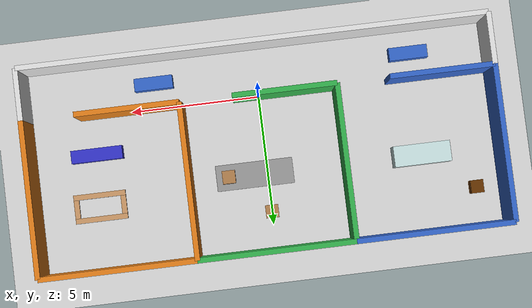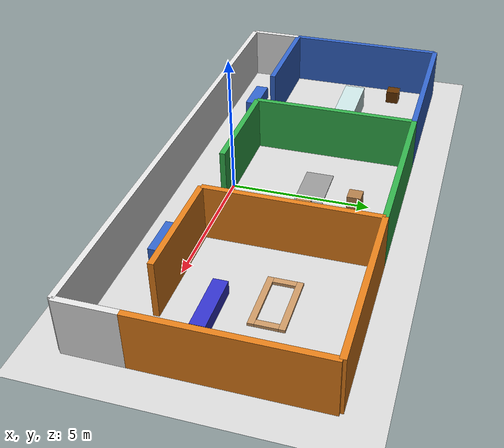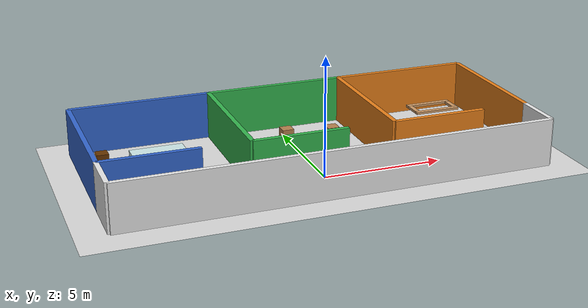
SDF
<?xml version='1.0' encoding='utf-8'?>
<sdf version='1.9'>
  <world name='pasillo_hospital_world'>
    <!-- PLUGINS BASE DE FÍSICAS -->
    <physics name='1ms' type='ignored'>
      <max_step_size>0.001</max_step_size>
      <real_time_factor>1</real_time_factor>
      <real_time_update_rate>1000</real_time_update_rate>
    </physics>
    <plugin name='gz::sim::systems::Physics' filename='ignition-gazebo-physics-system'/>
    <plugin name='gz::sim::systems::UserCommands' filename='ignition-gazebo-user-commands-system'/>
    <plugin name='gz::sim::systems::SceneBroadcaster' filename='ignition-gazebo-scene-broadcaster-system'/>
    <plugin name='gz::sim::systems::Contact' filename='ignition-gazebo-contact-system'/>
    <gravity>0 0 -9.8</gravity>

    <scene>
      <ambient>0.6 0.6 0.6 1</ambient>
      <background>0.8 0.8 0.8 1</background>
      <shadows>true</shadows>
    </scene>

    <!-- LUZ -->
    <light name='sun' type='directional'>
      <pose>0 0 10 0 0 0</pose>
      <cast_shadows>true</cast_shadows>
      <direction>-0.5 0.2 -0.9</direction>
      <diffuse>0.9 0.9 0.9 1</diffuse>
      <specular>0.2 0.2 0.2 1</specular>
    </light>

    <!-- SUELO -->
    <model name='ground_plane'>
      <static>true</static>
      <link name='link'>
        <collision name='collision'><geometry><plane><normal>0 0 1</normal><size>100 100</size></plane></geometry></collision>
        <visual name='visual'>
          <geometry><plane><normal>0 0 1</normal><size>100 100</size></plane></geometry>
          <material><ambient>0.85 0.85 0.85 1</ambient><diffuse>0.85 0.85 0.85 1</diffuse></material>
        </visual>
      </link>
    </model>

    <!-- ESTRUCTURA DEL EDIFICIO: 3 Cuartos Coloridos + 1 Pasillo -->
    <model name='building_structure'>
      <static>true</static>
      <link name='walls'>

        <!-- ================= PASILLO CENTRAL (BLANCO NEUTRO) ================= -->
        <!-- Pared inferior del pasillo -->
        <visual name='ext_front'><pose>0 -2 1 0 0 0</pose><geometry><box><size>18 0.2 2</size></box></geometry><material><ambient>0.9 0.9 0.9 1</ambient><diffuse>0.9 0.9 0.9 1</diffuse></material></visual>
        <collision name='cext_front'><pose>0 -2 1 0 0 0</pose><geometry><box><size>18 0.2 2</size></box></geometry></collision>

        <!-- Tapas laterales del pasillo -->
        <visual name='hall_left'><pose>-9 -1 1 0 0 1.5708</pose><geometry><box><size>2 0.2 2</size></box></geometry><material><ambient>0.9 0.9 0.9 1</ambient><diffuse>0.9 0.9 0.9 1</diffuse></material></visual>
        <collision name='chall_left'><pose>-9 -1 1 0 0 1.5708</pose><geometry><box><size>2 0.2 2</size></box></geometry></collision>
        <visual name='hall_right'><pose>9 -1 1 0 0 1.5708</pose><geometry><box><size>2 0.2 2</size></box></geometry><material><ambient>0.9 0.9 0.9 1</ambient><diffuse>0.9 0.9 0.9 1</diffuse></material></visual>
        <collision name='chall_right'><pose>9 -1 1 0 0 1.5708</pose><geometry><box><size>2 0.2 2</size></box></geometry></collision>

        <!-- ================= CUARTO 1 (IZQUIERDA - AZUL) ================= -->
        <visual name='r1_back'><pose>-6 6 1 0 0 0</pose><geometry><box><size>6 0.2 2</size></box></geometry><material><ambient>0.2 0.4 0.8 1</ambient><diffuse>0.2 0.4 0.8 1</diffuse></material></visual>
        <collision name='cr1_back'><pose>-6 6 1 0 0 0</pose><geometry><box><size>6 0.2 2</size></box></geometry></collision>

        <visual name='r1_left'><pose>-9 3 1 0 0 1.5708</pose><geometry><box><size>6 0.2 2</size></box></geometry><material><ambient>0.2 0.4 0.8 1</ambient><diffuse>0.2 0.4 0.8 1</diffuse></material></visual>
        <collision name='cr1_left'><pose>-9 3 1 0 0 1.5708</pose><geometry><box><size>6 0.2 2</size></box></geometry></collision>

        <visual name='r1_front'><pose>-7 0 1 0 0 0</pose><geometry><box><size>4 0.2 2</size></box></geometry><material><ambient>0.2 0.4 0.8 1</ambient><diffuse>0.2 0.4 0.8 1</diffuse></material></visual>
        <collision name='cr1_front'><pose>-7 0 1 0 0 0</pose><geometry><box><size>4 0.2 2</size></box></geometry></collision>

        <!-- ================= CUARTO 2 (CENTRO - VERDE) ================= -->
        <visual name='r2_back'><pose>0 6 1 0 0 0</pose><geometry><box><size>6 0.2 2</size></box></geometry><material><ambient>0.2 0.7 0.3 1</ambient><diffuse>0.2 0.7 0.3 1</diffuse></material></visual>
        <collision name='cr2_back'><pose>0 6 1 0 0 0</pose><geometry><box><size>6 0.2 2</size></box></geometry></collision>

        <!-- Pared divisoria entre Cuarto 1 y 2 -->
        <visual name='r2_left'><pose>-3 3 1 0 0 1.5708</pose><geometry><box><size>6 0.2 2</size></box></geometry><material><ambient>0.2 0.7 0.3 1</ambient><diffuse>0.2 0.7 0.3 1</diffuse></material></visual>
        <collision name='cr2_left'><pose>-3 3 1 0 0 1.5708</pose><geometry><box><size>6 0.2 2</size></box></geometry></collision>

        <visual name='r2_front'><pose>-1 0 1 0 0 0</pose><geometry><box><size>4 0.2 2</size></box></geometry><material><ambient>0.2 0.7 0.3 1</ambient><diffuse>0.2 0.7 0.3 1</diffuse></material></visual>
        <collision name='cr2_front'><pose>-1 0 1 0 0 0</pose><geometry><box><size>4 0.2 2</size></box></geometry></collision>

        <!-- ================= CUARTO 3 (DERECHA - NARANJA) ================= -->
        <visual name='r3_back'><pose>6 6 1 0 0 0</pose><geometry><box><size>6 0.2 2</size></box></geometry><material><ambient>0.9 0.5 0.1 1</ambient><diffuse>0.9 0.5 0.1 1</diffuse></material></visual>
        <collision name='cr3_back'><pose>6 6 1 0 0 0</pose><geometry><box><size>6 0.2 2</size></box></geometry></collision>

        <!-- Pared divisoria entre Cuarto 2 y 3 -->
        <visual name='r3_left'><pose>3 3 1 0 0 1.5708</pose><geometry><box><size>6 0.2 2</size></box></geometry><material><ambient>0.9 0.5 0.1 1</ambient><diffuse>0.9 0.5 0.1 1</diffuse></material></visual>
        <collision name='cr3_left'><pose>3 3 1 0 0 1.5708</pose><geometry><box><size>6 0.2 2</size></box></geometry></collision>

        <visual name='r3_right'><pose>9 3 1 0 0 1.5708</pose><geometry><box><size>6 0.2 2</size></box></geometry><material><ambient>0.9 0.5 0.1 1</ambient><diffuse>0.9 0.5 0.1 1</diffuse></material></visual>
        <collision name='cr3_right'><pose>9 3 1 0 0 1.5708</pose><geometry><box><size>6 0.2 2</size></box></geometry></collision>

        <visual name='r3_front'><pose>5 0 1 0 0 0</pose><geometry><box><size>4 0.2 2</size></box></geometry><material><ambient>0.9 0.5 0.1 1</ambient><diffuse>0.9 0.5 0.1 1</diffuse></material></visual>
        <collision name='cr3_front'><pose>5 0 1 0 0 0</pose><geometry><box><size>4 0.2 2</size></box></geometry></collision>
      </link>
    </model>

    <!-- OBSTÁCULOS EN CUARTO 1 (Azul) -->
    <model name='room1_items'>
      <static>true</static>
      <link name='r1_link'>
        <visual name='ot1'><pose>-6 3 0.45 0 0 0</pose><geometry><box><size>2.2 0.8 0.9</size></box></geometry><material><ambient>0.8 0.9 0.9 1</ambient><diffuse>0.8 0.9 0.9 1</diffuse></material></visual>
        <collision name='cot1'><pose>-6 3 0.45 0 0 0</pose><geometry><box><size>2.2 0.8 0.9</size></box></geometry></collision>
        <visual name='bc1_s'><pose>-8 4.5 0.25 0 0 0</pose><geometry><box><size>0.5 0.5 0.5</size></box></geometry><material><ambient>0.4 0.2 0 1</ambient><diffuse>0.4 0.2 0 1</diffuse></material></visual>
        <collision name='cbc1'><pose>-8 4.5 0.25 0 0 0</pose><geometry><box><size>0.5 0.5 0.5</size></box></geometry></collision>
      </link>
    </model>

    <!-- OBSTÁCULOS EN CUARTO 2 (Verde) -->
    <model name='room2_items'>
      <static>true</static>
      <link name='r2_link'>
        <visual name='s1_top'><pose>0.5 3 0.4 0 0 0</pose><geometry><box><size>3 1 0.05</size></box></geometry><material><ambient>0.6 0.6 0.6 1</ambient><diffuse>0.6 0.6 0.6 1</diffuse></material></visual>
        <collision name='cs1'><pose>0.5 3 0.4 0 0 0</pose><geometry><box><size>3 1 0.05</size></box></geometry></collision>
        <visual name='b1'><pose>1.5 3 0.675 0 0 0</pose><geometry><box><size>0.5 0.5 0.5</size></box></geometry><material><ambient>0.7 0.5 0.3 1</ambient><diffuse>0.7 0.5 0.3 1</diffuse></material></visual>
        <collision name='cb1'><pose>1.5 3 0.675 0 0 0</pose><geometry><box><size>0.5 0.5 0.5</size></box></geometry></collision>
        <visual name='b2'><pose>0 4.5 0.25 0 0 0</pose><geometry><box><size>0.5 0.5 0.5</size></box></geometry><material><ambient>0.7 0.5 0.3 1</ambient><diffuse>0.7 0.5 0.3 1</diffuse></material></visual>
        <collision name='cb2'><pose>0 4.5 0.25 0 0 0</pose><geometry><box><size>0.5 0.5 0.5</size></box></geometry></collision>
      </link>
    </model>

    <!-- OBSTÁCULOS EN CUARTO 3 (Naranja) -->
    <model name='room3_items'>
      <static>true</static>
      <link name='r3_link'>
        <visual name='top_front'><pose>6.5 4 0.95 0 0 0</pose><geometry><box><size>2.0 0.2 0.1</size></box></geometry><material><ambient>0.8 0.6 0.4 1</ambient><diffuse>0.8 0.6 0.4 1</diffuse></material></visual>
        <visual name='top_back'><pose>6.5 3.1 0.95 0 0 0</pose><geometry><box><size>2.0 0.2 0.1</size></box></geometry><material><ambient>0.8 0.6 0.4 1</ambient><diffuse>0.8 0.6 0.4 1</diffuse></material></visual>
        <visual name='top_left'><pose>5.6 3.55 0.95 0 0 0</pose><geometry><box><size>0.2 0.7 0.1</size></box></geometry><material><ambient>0.8 0.6 0.4 1</ambient><diffuse>0.8 0.6 0.4 1</diffuse></material></visual>
        <visual name='top_right'><pose>7.4 3.55 0.95 0 0 0</pose><geometry><box><size>0.2 0.7 0.1</size></box></geometry><material><ambient>0.8 0.6 0.4 1</ambient><diffuse>0.8 0.6 0.4 1</diffuse></material></visual>
        <collision name='ctf'><pose>6.5 4 0.95 0 0 0</pose><geometry><box><size>2.0 0.2 0.1</size></box></geometry></collision>
        <collision name='ctb'><pose>6.5 3.1 0.95 0 0 0</pose><geometry><box><size>2.0 0.2 0.1</size></box></geometry></collision>

        <visual name='c1s'><pose>6.5 1.5 0.25 0 0 0</pose><geometry><box><size>2 0.5 0.5</size></box></geometry><material><ambient>0.2 0.2 0.8 1</ambient><diffuse>0.2 0.2 0.8 1</diffuse></material></visual>
        <collision name='cc'><pose>6.5 1.5 0.25 0 0 0</pose><geometry><box><size>2 0.5 0.5</size></box></geometry></collision>
      </link>
    </model>

    <!-- OBSTÁCULOS EN EL PASILLO (Bancas Azules) -->
    <model name='hallway_items'>
      <static>true</static>
      <link name='hall_link'>
        <visual name='bench1'><pose>-6 -1 0.25 0 0 0</pose><geometry><box><size>1.5 0.5 0.5</size></box></geometry><material><ambient>0.2 0.4 0.8 1</ambient><diffuse>0.2 0.4 0.8 1</diffuse></material></visual>
        <collision name='cbench1'><pose>-6 -1 0.25 0 0 0</pose><geometry><box><size>1.5 0.5 0.5</size></box></geometry></collision>

        <visual name='bench2'><pose>4 -1 0.25 0 0 0</pose><geometry><box><size>1.5 0.5 0.5</size></box></geometry><material><ambient>0.2 0.4 0.8 1</ambient><diffuse>0.2 0.4 0.8 1</diffuse></material></visual>
        <collision name='cbench2'><pose>4 -1 0.25 0 0 0</pose><geometry><box><size>1.5 0.5 0.5</size></box></geometry></collision>
      </link>
    </model>

  </world>
</sdf>
